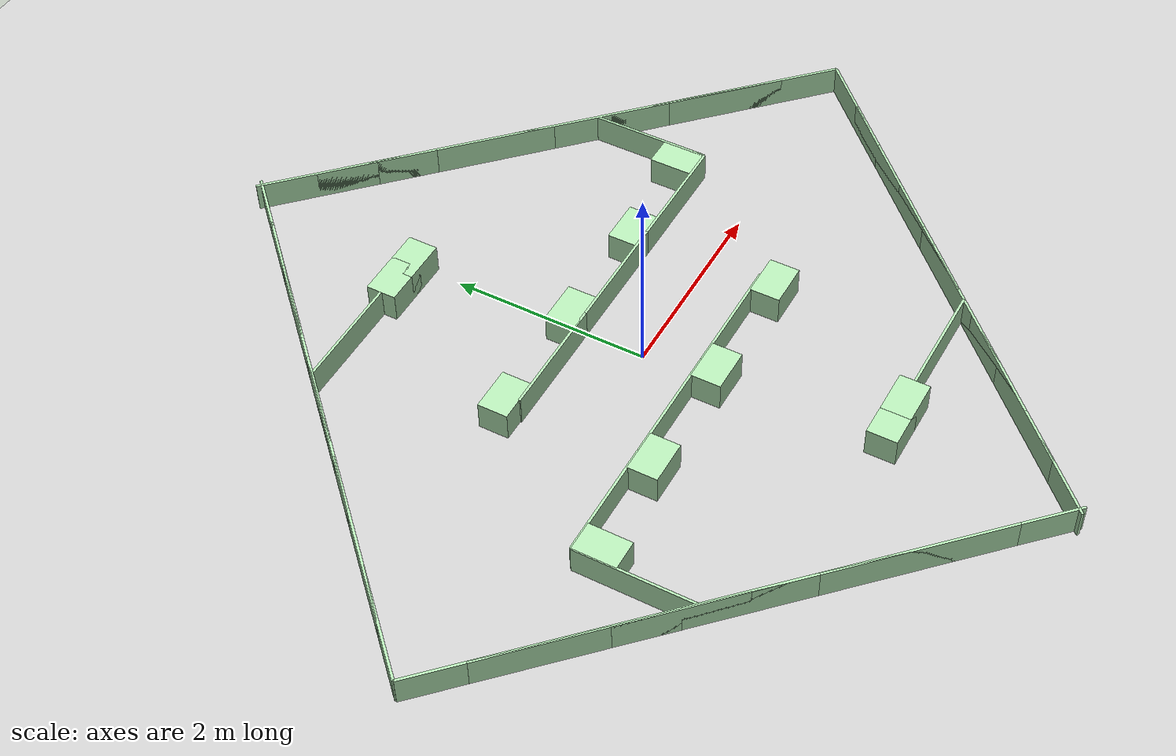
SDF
<?xml version="1.0" encoding="UTF-8"?>
<sdf version="1.4">
  <world name="default">
    <scene>
      <ambient>0.5 0.5 0.5 1</ambient>
      <background>0.5 0.5 0.5 1</background>
      <shadows>false</shadows>
    </scene>
    <physics type="ode">
      <gravity>0 0 -9.81</gravity>
      <ode>
        <solver>
          <type>quick</type>
          <iters>10</iters>
          <sor>1.3</sor>
        </solver>
        <constraints>
          <cfm>0.0</cfm>
          <erp>0.2</erp>
          <contact_max_correcting_vel>100.0</contact_max_correcting_vel>
          <contact_surface_layer>0.001</contact_surface_layer>
        </constraints>
      </ode>
      <real_time_update_rate>1000</real_time_update_rate>
      <max_step_size>0.001</max_step_size>
    </physics>
    <light type="directional" name="directional_light_1">
      <cast_shadows>false</cast_shadows>
      <pose>0 0 30 0.1 0.1 0</pose>
      <diffuse>1.0 1.0 1.0 1</diffuse>
      <specular>.1 .1 .1 1</specular>
      <attenuation>
        <range>300</range>
      </attenuation>
      <direction>0.1 0.1 -1</direction>
    </light>
    <model name='ground_plane'>
      <static>1</static>
      <link name='link'>
        <collision name='collision'>
          <geometry>
            <plane>
              <normal>0 0 1</normal>
              <size>100 100</size>
            </plane>
          </geometry>
          <surface>
            <friction>
              <ode>
                <mu>100</mu>
                <mu2>50</mu2>
              </ode>
              <torsional>
                <ode/>
              </torsional>
            </friction>
            <contact>
              <ode/>
            </contact>
            <bounce/>
          </surface>
          <max_contacts>10</max_contacts>
        </collision>
        <visual name='visual'>
          <cast_shadows>0</cast_shadows>
          <geometry>
            <plane>
              <normal>0 0 1</normal>
              <size>100 100</size>
            </plane>
          </geometry>
          <material>
            <script>
              <uri>file://media/materials/scripts/gazebo.material</uri>
              <name>Gazebo/Grey</name>
            </script>
          </material>
        </visual>
        <self_collide>0</self_collide>
        <kinematic>0</kinematic>
        <gravity>1</gravity>
      </link>
    </model>

<!--______________________________gazebo world______________________________ -->
    <model name="wall_1">
      <static>true</static>
      <link name="wall_1_link">
        <pose> 3.83614770619 0.431052293811  0.15 0 0 0.785398163397</pose>
        <collision name="wall_1_collision">
          <geometry>
            <box>
              <size>0.0254 1.2192 0.3</size>
            </box>
          </geometry>
        </collision>
        <visual name="wall_1_visual">
          <geometry>
            <box>
              <size>0.0254 1.2192 0.3</size>
            </box>
          </geometry>
          <material>
             <ambient>0.7 0.9 0.7 1.0</ambient>
             <diffuse>0.7 0.9 0.7 1.0</diffuse>
             <specular>0.1 0.1 0.1 1</specular>
             <emissive>0 0 0 0</emissive>
           </material>
        </visual>
      </link>
    </model>

    <model name="wall_2">
      <static>true</static>
      <link name="wall_2_link">
        <pose> 3.83614770619 -0.431052293811  0.15 0 0 -0.785398163397</pose>
        <collision name="wall_2_collision">
          <geometry>
            <box>
              <size>0.0254 1.2192 0.3</size>
            </box>
          </geometry>
        </collision>
        <visual name="wall_2_visual">
          <geometry>
            <box>
              <size>0.0254 1.2192 0.3</size>
            </box>
          </geometry>
          <material>
             <ambient>0.7 0.9 0.7 1.0</ambient>
             <diffuse>0.7 0.9 0.7 1.0</diffuse>
             <specular>0.1 0.1 0.1 1</specular>
             <emissive>0 0 0 0</emissive>
           </material>
        </visual>
      </link>
    </model>

    <model name="wall_3">
      <static>true</static>
      <link name="wall_3_link">
        <pose> -3.83614770619 -0.431052293811  0.15 0 0 0.785398163397</pose>
        <collision name="wall_3_collision">
          <geometry>
            <box>
              <size>0.0254 1.2192 0.3</size>
            </box>
          </geometry>
        </collision>
        <visual name="wall_3_visual">
          <geometry>
            <box>
              <size>0.0254 1.2192 0.3</size>
            </box>
          </geometry>
          <material>
             <ambient>0.7 0.9 0.7 1.0</ambient>
             <diffuse>0.7 0.9 0.7 1.0</diffuse>
             <specular>0.1 0.1 0.1 1</specular>
             <emissive>0 0 0 0</emissive>
           </material>
        </visual>
      </link>
    </model>

    <model name="wall_4">
      <static>true</static>
      <link name="wall_4_link">
        <pose> -3.83614770619 0.431052293811  0.15 0 0 -0.785398163397</pose>
        <collision name="wall_4_collision">
          <geometry>
            <box>
              <size>0.0254 1.2192 0.3</size>
            </box>
          </geometry>
        </collision>
        <visual name="wall_4_visual">
          <geometry>
            <box>
              <size>0.0254 1.2192 0.3</size>
            </box>
          </geometry>
          <material>
             <ambient>0.7 0.9 0.7 1.0</ambient>
             <diffuse>0.7 0.9 0.7 1.0</diffuse>
             <specular>0.1 0.1 0.1 1</specular>
             <emissive>0 0 0 0</emissive>
           </material>
        </visual>
      </link>
    </model>

    <model name="wall_5">
      <static>true</static>
      <link name="wall_5_link">
        <pose> 3.40509541238 0.862104587623  0.15 0 0 0.785398163397</pose>
        <collision name="wall_5_collision">
          <geometry>
            <box>
              <size>0.0254 1.2192 0.3</size>
            </box>
          </geometry>
        </collision>
        <visual name="wall_5_visual">
          <geometry>
            <box>
              <size>0.0254 1.2192 0.3</size>
            </box>
          </geometry>
          <material>
             <ambient>0.7 0.9 0.7 1.0</ambient>
             <diffuse>0.7 0.9 0.7 1.0</diffuse>
             <specular>0.1 0.1 0.1 1</specular>
             <emissive>0 0 0 0</emissive>
           </material>
        </visual>
      </link>
    </model>

    <model name="wall_6">
      <static>true</static>
      <link name="wall_6_link">
        <pose> 3.40509541238 -0.862104587623  0.15 0 0 -0.785398163397</pose>
        <collision name="wall_6_collision">
          <geometry>
            <box>
              <size>0.0254 1.2192 0.3</size>
            </box>
          </geometry>
        </collision>
        <visual name="wall_6_visual">
          <geometry>
            <box>
              <size>0.0254 1.2192 0.3</size>
            </box>
          </geometry>
          <material>
             <ambient>0.7 0.9 0.7 1.0</ambient>
             <diffuse>0.7 0.9 0.7 1.0</diffuse>
             <specular>0.1 0.1 0.1 1</specular>
             <emissive>0 0 0 0</emissive>
           </material>
        </visual>
      </link>
    </model>

    <model name="wall_7">
      <static>true</static>
      <link name="wall_7_link">
        <pose> -3.40509541238 -0.862104587623  0.15 0 0 0.785398163397</pose>
        <collision name="wall_7_collision">
          <geometry>
            <box>
              <size>0.0254 1.2192 0.3</size>
            </box>
          </geometry>
        </collision>
        <visual name="wall_7_visual">
          <geometry>
            <box>
              <size>0.0254 1.2192 0.3</size>
            </box>
          </geometry>
          <material>
             <ambient>0.7 0.9 0.7 1.0</ambient>
             <diffuse>0.7 0.9 0.7 1.0</diffuse>
             <specular>0.1 0.1 0.1 1</specular>
             <emissive>0 0 0 0</emissive>
           </material>
        </visual>
      </link>
    </model>

    <model name="wall_8">
      <static>true</static>
      <link name="wall_8_link">
        <pose> -3.40509541238 0.862104587623  0.15 0 0 -0.785398163397</pose>
        <collision name="wall_8_collision">
          <geometry>
            <box>
              <size>0.0254 1.2192 0.3</size>
            </box>
          </geometry>
        </collision>
        <visual name="wall_8_visual">
          <geometry>
            <box>
              <size>0.0254 1.2192 0.3</size>
            </box>
          </geometry>
          <material>
             <ambient>0.7 0.9 0.7 1.0</ambient>
             <diffuse>0.7 0.9 0.7 1.0</diffuse>
             <specular>0.1 0.1 0.1 1</specular>
             <emissive>0 0 0 0</emissive>
           </material>
        </visual>
      </link>
    </model>

    <model name="wall_9">
      <static>true</static>
      <link name="wall_9_link">
        <pose> 2.97404311857 1.29315688143  0.15 0 0 0.785398163397</pose>
        <collision name="wall_9_collision">
          <geometry>
            <box>
              <size>0.0254 1.2192 0.3</size>
            </box>
          </geometry>
        </collision>
        <visual name="wall_9_visual">
          <geometry>
            <box>
              <size>0.0254 1.2192 0.3</size>
            </box>
          </geometry>
          <material>
             <ambient>0.7 0.9 0.7 1.0</ambient>
             <diffuse>0.7 0.9 0.7 1.0</diffuse>
             <specular>0.1 0.1 0.1 1</specular>
             <emissive>0 0 0 0</emissive>
           </material>
        </visual>
      </link>
    </model>

    <model name="wall_10">
      <static>true</static>
      <link name="wall_10_link">
        <pose> 2.97404311857 -1.29315688143  0.15 0 0 -0.785398163397</pose>
        <collision name="wall_10_collision">
          <geometry>
            <box>
              <size>0.0254 1.2192 0.3</size>
            </box>
          </geometry>
        </collision>
        <visual name="wall_10_visual">
          <geometry>
            <box>
              <size>0.0254 1.2192 0.3</size>
            </box>
          </geometry>
          <material>
             <ambient>0.7 0.9 0.7 1.0</ambient>
             <diffuse>0.7 0.9 0.7 1.0</diffuse>
             <specular>0.1 0.1 0.1 1</specular>
             <emissive>0 0 0 0</emissive>
           </material>
        </visual>
      </link>
    </model>

    <model name="wall_11">
      <static>true</static>
      <link name="wall_11_link">
        <pose> -2.97404311857 -1.29315688143  0.15 0 0 0.785398163397</pose>
        <collision name="wall_11_collision">
          <geometry>
            <box>
              <size>0.0254 1.2192 0.3</size>
            </box>
          </geometry>
        </collision>
        <visual name="wall_11_visual">
          <geometry>
            <box>
              <size>0.0254 1.2192 0.3</size>
            </box>
          </geometry>
          <material>
             <ambient>0.7 0.9 0.7 1.0</ambient>
             <diffuse>0.7 0.9 0.7 1.0</diffuse>
             <specular>0.1 0.1 0.1 1</specular>
             <emissive>0 0 0 0</emissive>
           </material>
        </visual>
      </link>
    </model>

    <model name="wall_12">
      <static>true</static>
      <link name="wall_12_link">
        <pose> -2.97404311857 1.29315688143  0.15 0 0 -0.785398163397</pose>
        <collision name="wall_12_collision">
          <geometry>
            <box>
              <size>0.0254 1.2192 0.3</size>
            </box>
          </geometry>
        </collision>
        <visual name="wall_12_visual">
          <geometry>
            <box>
              <size>0.0254 1.2192 0.3</size>
            </box>
          </geometry>
          <material>
             <ambient>0.7 0.9 0.7 1.0</ambient>
             <diffuse>0.7 0.9 0.7 1.0</diffuse>
             <specular>0.1 0.1 0.1 1</specular>
             <emissive>0 0 0 0</emissive>
           </material>
        </visual>
      </link>
    </model>

    <model name="wall_13">
      <static>true</static>
      <link name="wall_13_link">
        <pose> 2.54299082475 1.72420917525  0.15 0 0 0.785398163397</pose>
        <collision name="wall_13_collision">
          <geometry>
            <box>
              <size>0.0254 1.2192 0.3</size>
            </box>
          </geometry>
        </collision>
        <visual name="wall_13_visual">
          <geometry>
            <box>
              <size>0.0254 1.2192 0.3</size>
            </box>
          </geometry>
          <material>
             <ambient>0.7 0.9 0.7 1.0</ambient>
             <diffuse>0.7 0.9 0.7 1.0</diffuse>
             <specular>0.1 0.1 0.1 1</specular>
             <emissive>0 0 0 0</emissive>
           </material>
        </visual>
      </link>
    </model>

    <model name="wall_14">
      <static>true</static>
      <link name="wall_14_link">
        <pose> 2.54299082475 -1.72420917525  0.15 0 0 -0.785398163397</pose>
        <collision name="wall_14_collision">
          <geometry>
            <box>
              <size>0.0254 1.2192 0.3</size>
            </box>
          </geometry>
        </collision>
        <visual name="wall_14_visual">
          <geometry>
            <box>
              <size>0.0254 1.2192 0.3</size>
            </box>
          </geometry>
          <material>
             <ambient>0.7 0.9 0.7 1.0</ambient>
             <diffuse>0.7 0.9 0.7 1.0</diffuse>
             <specular>0.1 0.1 0.1 1</specular>
             <emissive>0 0 0 0</emissive>
           </material>
        </visual>
      </link>
    </model>

    <model name="wall_15">
      <static>true</static>
      <link name="wall_15_link">
        <pose> -2.54299082475 -1.72420917525  0.15 0 0 0.785398163397</pose>
        <collision name="wall_15_collision">
          <geometry>
            <box>
              <size>0.0254 1.2192 0.3</size>
            </box>
          </geometry>
        </collision>
        <visual name="wall_15_visual">
          <geometry>
            <box>
              <size>0.0254 1.2192 0.3</size>
            </box>
          </geometry>
          <material>
             <ambient>0.7 0.9 0.7 1.0</ambient>
             <diffuse>0.7 0.9 0.7 1.0</diffuse>
             <specular>0.1 0.1 0.1 1</specular>
             <emissive>0 0 0 0</emissive>
           </material>
        </visual>
      </link>
    </model>

    <model name="wall_16">
      <static>true</static>
      <link name="wall_16_link">
        <pose> -2.54299082475 1.72420917525  0.15 0 0 -0.785398163397</pose>
        <collision name="wall_16_collision">
          <geometry>
            <box>
              <size>0.0254 1.2192 0.3</size>
            </box>
          </geometry>
        </collision>
        <visual name="wall_16_visual">
          <geometry>
            <box>
              <size>0.0254 1.2192 0.3</size>
            </box>
          </geometry>
          <material>
             <ambient>0.7 0.9 0.7 1.0</ambient>
             <diffuse>0.7 0.9 0.7 1.0</diffuse>
             <specular>0.1 0.1 0.1 1</specular>
             <emissive>0 0 0 0</emissive>
           </material>
        </visual>
      </link>
    </model>

    <model name="wall_17">
      <static>true</static>
      <link name="wall_17_link">
        <pose> 2.11193853094 2.15526146906  0.15 0 0 0.785398163397</pose>
        <collision name="wall_17_collision">
          <geometry>
            <box>
              <size>0.0254 1.2192 0.3</size>
            </box>
          </geometry>
        </collision>
        <visual name="wall_17_visual">
          <geometry>
            <box>
              <size>0.0254 1.2192 0.3</size>
            </box>
          </geometry>
          <material>
             <ambient>0.7 0.9 0.7 1.0</ambient>
             <diffuse>0.7 0.9 0.7 1.0</diffuse>
             <specular>0.1 0.1 0.1 1</specular>
             <emissive>0 0 0 0</emissive>
           </material>
        </visual>
      </link>
    </model>

    <model name="wall_18">
      <static>true</static>
      <link name="wall_18_link">
        <pose> 2.11193853094 -2.15526146906  0.15 0 0 -0.785398163397</pose>
        <collision name="wall_18_collision">
          <geometry>
            <box>
              <size>0.0254 1.2192 0.3</size>
            </box>
          </geometry>
        </collision>
        <visual name="wall_18_visual">
          <geometry>
            <box>
              <size>0.0254 1.2192 0.3</size>
            </box>
          </geometry>
          <material>
             <ambient>0.7 0.9 0.7 1.0</ambient>
             <diffuse>0.7 0.9 0.7 1.0</diffuse>
             <specular>0.1 0.1 0.1 1</specular>
             <emissive>0 0 0 0</emissive>
           </material>
        </visual>
      </link>
    </model>

    <model name="wall_19">
      <static>true</static>
      <link name="wall_19_link">
        <pose> -2.11193853094 -2.15526146906  0.15 0 0 0.785398163397</pose>
        <collision name="wall_19_collision">
          <geometry>
            <box>
              <size>0.0254 1.2192 0.3</size>
            </box>
          </geometry>
        </collision>
        <visual name="wall_19_visual">
          <geometry>
            <box>
              <size>0.0254 1.2192 0.3</size>
            </box>
          </geometry>
          <material>
             <ambient>0.7 0.9 0.7 1.0</ambient>
             <diffuse>0.7 0.9 0.7 1.0</diffuse>
             <specular>0.1 0.1 0.1 1</specular>
             <emissive>0 0 0 0</emissive>
           </material>
        </visual>
      </link>
    </model>

    <model name="wall_20">
      <static>true</static>
      <link name="wall_20_link">
        <pose> -2.11193853094 2.15526146906  0.15 0 0 -0.785398163397</pose>
        <collision name="wall_20_collision">
          <geometry>
            <box>
              <size>0.0254 1.2192 0.3</size>
            </box>
          </geometry>
        </collision>
        <visual name="wall_20_visual">
          <geometry>
            <box>
              <size>0.0254 1.2192 0.3</size>
            </box>
          </geometry>
          <material>
             <ambient>0.7 0.9 0.7 1.0</ambient>
             <diffuse>0.7 0.9 0.7 1.0</diffuse>
             <specular>0.1 0.1 0.1 1</specular>
             <emissive>0 0 0 0</emissive>
           </material>
        </visual>
      </link>
    </model>

    <model name="wall_21">
      <static>true</static>
      <link name="wall_21_link">
        <pose> 1.68088623713 2.58631376287  0.15 0 0 0.785398163397</pose>
        <collision name="wall_21_collision">
          <geometry>
            <box>
              <size>0.0254 1.2192 0.3</size>
            </box>
          </geometry>
        </collision>
        <visual name="wall_21_visual">
          <geometry>
            <box>
              <size>0.0254 1.2192 0.3</size>
            </box>
          </geometry>
          <material>
             <ambient>0.7 0.9 0.7 1.0</ambient>
             <diffuse>0.7 0.9 0.7 1.0</diffuse>
             <specular>0.1 0.1 0.1 1</specular>
             <emissive>0 0 0 0</emissive>
           </material>
        </visual>
      </link>
    </model>

    <model name="wall_22">
      <static>true</static>
      <link name="wall_22_link">
        <pose> 1.68088623713 -2.58631376287  0.15 0 0 -0.785398163397</pose>
        <collision name="wall_22_collision">
          <geometry>
            <box>
              <size>0.0254 1.2192 0.3</size>
            </box>
          </geometry>
        </collision>
        <visual name="wall_22_visual">
          <geometry>
            <box>
              <size>0.0254 1.2192 0.3</size>
            </box>
          </geometry>
          <material>
             <ambient>0.7 0.9 0.7 1.0</ambient>
             <diffuse>0.7 0.9 0.7 1.0</diffuse>
             <specular>0.1 0.1 0.1 1</specular>
             <emissive>0 0 0 0</emissive>
           </material>
        </visual>
      </link>
    </model>

    <model name="wall_23">
      <static>true</static>
      <link name="wall_23_link">
        <pose> -1.68088623713 -2.58631376287  0.15 0 0 0.785398163397</pose>
        <collision name="wall_23_collision">
          <geometry>
            <box>
              <size>0.0254 1.2192 0.3</size>
            </box>
          </geometry>
        </collision>
        <visual name="wall_23_visual">
          <geometry>
            <box>
              <size>0.0254 1.2192 0.3</size>
            </box>
          </geometry>
          <material>
             <ambient>0.7 0.9 0.7 1.0</ambient>
             <diffuse>0.7 0.9 0.7 1.0</diffuse>
             <specular>0.1 0.1 0.1 1</specular>
             <emissive>0 0 0 0</emissive>
           </material>
        </visual>
      </link>
    </model>

    <model name="wall_24">
      <static>true</static>
      <link name="wall_24_link">
        <pose> -1.68088623713 2.58631376287  0.15 0 0 -0.785398163397</pose>
        <collision name="wall_24_collision">
          <geometry>
            <box>
              <size>0.0254 1.2192 0.3</size>
            </box>
          </geometry>
        </collision>
        <visual name="wall_24_visual">
          <geometry>
            <box>
              <size>0.0254 1.2192 0.3</size>
            </box>
          </geometry>
          <material>
             <ambient>0.7 0.9 0.7 1.0</ambient>
             <diffuse>0.7 0.9 0.7 1.0</diffuse>
             <specular>0.1 0.1 0.1 1</specular>
             <emissive>0 0 0 0</emissive>
           </material>
        </visual>
      </link>
    </model>

    <model name="wall_25">
      <static>true</static>
      <link name="wall_25_link">
        <pose> 1.24983394332 3.01736605668  0.15 0 0 0.785398163397</pose>
        <collision name="wall_25_collision">
          <geometry>
            <box>
              <size>0.0254 1.2192 0.3</size>
            </box>
          </geometry>
        </collision>
        <visual name="wall_25_visual">
          <geometry>
            <box>
              <size>0.0254 1.2192 0.3</size>
            </box>
          </geometry>
          <material>
             <ambient>0.7 0.9 0.7 1.0</ambient>
             <diffuse>0.7 0.9 0.7 1.0</diffuse>
             <specular>0.1 0.1 0.1 1</specular>
             <emissive>0 0 0 0</emissive>
           </material>
        </visual>
      </link>
    </model>

    <model name="wall_26">
      <static>true</static>
      <link name="wall_26_link">
        <pose> 1.24983394332 -3.01736605668  0.15 0 0 -0.785398163397</pose>
        <collision name="wall_26_collision">
          <geometry>
            <box>
              <size>0.0254 1.2192 0.3</size>
            </box>
          </geometry>
        </collision>
        <visual name="wall_26_visual">
          <geometry>
            <box>
              <size>0.0254 1.2192 0.3</size>
            </box>
          </geometry>
          <material>
             <ambient>0.7 0.9 0.7 1.0</ambient>
             <diffuse>0.7 0.9 0.7 1.0</diffuse>
             <specular>0.1 0.1 0.1 1</specular>
             <emissive>0 0 0 0</emissive>
           </material>
        </visual>
      </link>
    </model>

    <model name="wall_27">
      <static>true</static>
      <link name="wall_27_link">
        <pose> -1.24983394332 -3.01736605668  0.15 0 0 0.785398163397</pose>
        <collision name="wall_27_collision">
          <geometry>
            <box>
              <size>0.0254 1.2192 0.3</size>
            </box>
          </geometry>
        </collision>
        <visual name="wall_27_visual">
          <geometry>
            <box>
              <size>0.0254 1.2192 0.3</size>
            </box>
          </geometry>
          <material>
             <ambient>0.7 0.9 0.7 1.0</ambient>
             <diffuse>0.7 0.9 0.7 1.0</diffuse>
             <specular>0.1 0.1 0.1 1</specular>
             <emissive>0 0 0 0</emissive>
           </material>
        </visual>
      </link>
    </model>

    <model name="wall_28">
      <static>true</static>
      <link name="wall_28_link">
        <pose> -1.24983394332 3.01736605668  0.15 0 0 -0.785398163397</pose>
        <collision name="wall_28_collision">
          <geometry>
            <box>
              <size>0.0254 1.2192 0.3</size>
            </box>
          </geometry>
        </collision>
        <visual name="wall_28_visual">
          <geometry>
            <box>
              <size>0.0254 1.2192 0.3</size>
            </box>
          </geometry>
          <material>
             <ambient>0.7 0.9 0.7 1.0</ambient>
             <diffuse>0.7 0.9 0.7 1.0</diffuse>
             <specular>0.1 0.1 0.1 1</specular>
             <emissive>0 0 0 0</emissive>
           </material>
        </visual>
      </link>
    </model>

    <model name="wall_29">
      <static>true</static>
      <link name="wall_29_link">
        <pose> 0.818781649509 3.44841835049  0.15 0 0 0.785398163397</pose>
        <collision name="wall_29_collision">
          <geometry>
            <box>
              <size>0.0254 1.2192 0.3</size>
            </box>
          </geometry>
        </collision>
        <visual name="wall_29_visual">
          <geometry>
            <box>
              <size>0.0254 1.2192 0.3</size>
            </box>
          </geometry>
          <material>
             <ambient>0.7 0.9 0.7 1.0</ambient>
             <diffuse>0.7 0.9 0.7 1.0</diffuse>
             <specular>0.1 0.1 0.1 1</specular>
             <emissive>0 0 0 0</emissive>
           </material>
        </visual>
      </link>
    </model>

    <model name="wall_30">
      <static>true</static>
      <link name="wall_30_link">
        <pose> 0.818781649509 -3.44841835049  0.15 0 0 -0.785398163397</pose>
        <collision name="wall_30_collision">
          <geometry>
            <box>
              <size>0.0254 1.2192 0.3</size>
            </box>
          </geometry>
        </collision>
        <visual name="wall_30_visual">
          <geometry>
            <box>
              <size>0.0254 1.2192 0.3</size>
            </box>
          </geometry>
          <material>
             <ambient>0.7 0.9 0.7 1.0</ambient>
             <diffuse>0.7 0.9 0.7 1.0</diffuse>
             <specular>0.1 0.1 0.1 1</specular>
             <emissive>0 0 0 0</emissive>
           </material>
        </visual>
      </link>
    </model>

    <model name="wall_31">
      <static>true</static>
      <link name="wall_31_link">
        <pose> -0.818781649509 -3.44841835049  0.15 0 0 0.785398163397</pose>
        <collision name="wall_31_collision">
          <geometry>
            <box>
              <size>0.0254 1.2192 0.3</size>
            </box>
          </geometry>
        </collision>
        <visual name="wall_31_visual">
          <geometry>
            <box>
              <size>0.0254 1.2192 0.3</size>
            </box>
          </geometry>
          <material>
             <ambient>0.7 0.9 0.7 1.0</ambient>
             <diffuse>0.7 0.9 0.7 1.0</diffuse>
             <specular>0.1 0.1 0.1 1</specular>
             <emissive>0 0 0 0</emissive>
           </material>
        </visual>
      </link>
    </model>

    <model name="wall_32">
      <static>true</static>
      <link name="wall_32_link">
        <pose> -0.818781649509 3.44841835049  0.15 0 0 -0.785398163397</pose>
        <collision name="wall_32_collision">
          <geometry>
            <box>
              <size>0.0254 1.2192 0.3</size>
            </box>
          </geometry>
        </collision>
        <visual name="wall_32_visual">
          <geometry>
            <box>
              <size>0.0254 1.2192 0.3</size>
            </box>
          </geometry>
          <material>
             <ambient>0.7 0.9 0.7 1.0</ambient>
             <diffuse>0.7 0.9 0.7 1.0</diffuse>
             <specular>0.1 0.1 0.1 1</specular>
             <emissive>0 0 0 0</emissive>
           </material>
        </visual>
      </link>
    </model>

    <model name="wall_33">
      <static>true</static>
      <link name="wall_33_link">
        <pose> 0.387729355698 3.8794706443  0.15 0 0 0.785398163397</pose>
        <collision name="wall_33_collision">
          <geometry>
            <box>
              <size>0.0254 1.2192 0.3</size>
            </box>
          </geometry>
        </collision>
        <visual name="wall_33_visual">
          <geometry>
            <box>
              <size>0.0254 1.2192 0.3</size>
            </box>
          </geometry>
          <material>
             <ambient>0.7 0.9 0.7 1.0</ambient>
             <diffuse>0.7 0.9 0.7 1.0</diffuse>
             <specular>0.1 0.1 0.1 1</specular>
             <emissive>0 0 0 0</emissive>
           </material>
        </visual>
      </link>
    </model>

    <model name="wall_34">
      <static>true</static>
      <link name="wall_34_link">
        <pose> 0.387729355698 -3.8794706443  0.15 0 0 -0.785398163397</pose>
        <collision name="wall_34_collision">
          <geometry>
            <box>
              <size>0.0254 1.2192 0.3</size>
            </box>
          </geometry>
        </collision>
        <visual name="wall_34_visual">
          <geometry>
            <box>
              <size>0.0254 1.2192 0.3</size>
            </box>
          </geometry>
          <material>
             <ambient>0.7 0.9 0.7 1.0</ambient>
             <diffuse>0.7 0.9 0.7 1.0</diffuse>
             <specular>0.1 0.1 0.1 1</specular>
             <emissive>0 0 0 0</emissive>
           </material>
        </visual>
      </link>
    </model>

    <model name="wall_35">
      <static>true</static>
      <link name="wall_35_link">
        <pose> -0.387729355698 -3.8794706443  0.15 0 0 0.785398163397</pose>
        <collision name="wall_35_collision">
          <geometry>
            <box>
              <size>0.0254 1.2192 0.3</size>
            </box>
          </geometry>
        </collision>
        <visual name="wall_35_visual">
          <geometry>
            <box>
              <size>0.0254 1.2192 0.3</size>
            </box>
          </geometry>
          <material>
             <ambient>0.7 0.9 0.7 1.0</ambient>
             <diffuse>0.7 0.9 0.7 1.0</diffuse>
             <specular>0.1 0.1 0.1 1</specular>
             <emissive>0 0 0 0</emissive>
           </material>
        </visual>
      </link>
    </model>

    <model name="wall_36">
      <static>true</static>
      <link name="wall_36_link">
        <pose> -0.387729355698 3.8794706443  0.15 0 0 -0.785398163397</pose>
        <collision name="wall_36_collision">
          <geometry>
            <box>
              <size>0.0254 1.2192 0.3</size>
            </box>
          </geometry>
        </collision>
        <visual name="wall_36_visual">
          <geometry>
            <box>
              <size>0.0254 1.2192 0.3</size>
            </box>
          </geometry>
          <material>
             <ambient>0.7 0.9 0.7 1.0</ambient>
             <diffuse>0.7 0.9 0.7 1.0</diffuse>
             <specular>0.1 0.1 0.1 1</specular>
             <emissive>0 0 0 0</emissive>
           </material>
        </visual>
      </link>
    </model>

    <model name="wall_37">
      <static>true</static>
      <link name="wall_37_link">
        <pose> -1.8288 -0.6096  0.15 0 0 1.57079632679</pose>
        <collision name="wall_37_collision">
          <geometry>
            <box>
              <size>0.0254 1.2192 0.3</size>
            </box>
          </geometry>
        </collision>
        <visual name="wall_37_visual">
          <geometry>
            <box>
              <size>0.0254 1.2192 0.3</size>
            </box>
          </geometry>
          <material>
             <ambient>0.7 0.9 0.7 1.0</ambient>
             <diffuse>0.7 0.9 0.7 1.0</diffuse>
             <specular>0.1 0.1 0.1 1</specular>
             <emissive>0 0 0 0</emissive>
           </material>
        </visual>
      </link>
    </model>

    <model name="wall_38">
      <static>true</static>
      <link name="wall_38_link">
        <pose> 1.8288 0.6096  0.15 0 0 1.57079632679</pose>
        <collision name="wall_38_collision">
          <geometry>
            <box>
              <size>0.0254 1.2192 0.3</size>
            </box>
          </geometry>
        </collision>
        <visual name="wall_38_visual">
          <geometry>
            <box>
              <size>0.0254 1.2192 0.3</size>
            </box>
          </geometry>
          <material>
             <ambient>0.7 0.9 0.7 1.0</ambient>
             <diffuse>0.7 0.9 0.7 1.0</diffuse>
             <specular>0.1 0.1 0.1 1</specular>
             <emissive>0 0 0 0</emissive>
           </material>
        </visual>
      </link>
    </model>

    <model name="wall_39">
      <static>true</static>
      <link name="wall_39_link">
        <pose> -0.6096 -0.6096  0.15 0 0 1.57079632679</pose>
        <collision name="wall_39_collision">
          <geometry>
            <box>
              <size>0.0254 1.2192 0.3</size>
            </box>
          </geometry>
        </collision>
        <visual name="wall_39_visual">
          <geometry>
            <box>
              <size>0.0254 1.2192 0.3</size>
            </box>
          </geometry>
          <material>
             <ambient>0.7 0.9 0.7 1.0</ambient>
             <diffuse>0.7 0.9 0.7 1.0</diffuse>
             <specular>0.1 0.1 0.1 1</specular>
             <emissive>0 0 0 0</emissive>
           </material>
        </visual>
      </link>
    </model>

    <model name="wall_40">
      <static>true</static>
      <link name="wall_40_link">
        <pose> 0.6096 0.6096  0.15 0 0 1.57079632679</pose>
        <collision name="wall_40_collision">
          <geometry>
            <box>
              <size>0.0254 1.2192 0.3</size>
            </box>
          </geometry>
        </collision>
        <visual name="wall_40_visual">
          <geometry>
            <box>
              <size>0.0254 1.2192 0.3</size>
            </box>
          </geometry>
          <material>
             <ambient>0.7 0.9 0.7 1.0</ambient>
             <diffuse>0.7 0.9 0.7 1.0</diffuse>
             <specular>0.1 0.1 0.1 1</specular>
             <emissive>0 0 0 0</emissive>
           </material>
        </visual>
      </link>
    </model>

    <model name="wall_41">
      <static>true</static>
      <link name="wall_41_link">
        <pose> -1.2192 2.4384  0.15 0 0 1.57079632679</pose>
        <collision name="wall_41_collision">
          <geometry>
            <box>
              <size>0.0254 1.2192 0.3</size>
            </box>
          </geometry>
        </collision>
        <visual name="wall_41_visual">
          <geometry>
            <box>
              <size>0.0254 1.2192 0.3</size>
            </box>
          </geometry>
          <material>
             <ambient>0.7 0.9 0.7 1.0</ambient>
             <diffuse>0.7 0.9 0.7 1.0</diffuse>
             <specular>0.1 0.1 0.1 1</specular>
             <emissive>0 0 0 0</emissive>
           </material>
        </visual>
      </link>
    </model>

    <model name="wall_42">
      <static>true</static>
      <link name="wall_42_link">
        <pose> 1.2192 -2.4384  0.15 0 0 1.57079632679</pose>
        <collision name="wall_42_collision">
          <geometry>
            <box>
              <size>0.0254 1.2192 0.3</size>
            </box>
          </geometry>
        </collision>
        <visual name="wall_42_visual">
          <geometry>
            <box>
              <size>0.0254 1.2192 0.3</size>
            </box>
          </geometry>
          <material>
             <ambient>0.7 0.9 0.7 1.0</ambient>
             <diffuse>0.7 0.9 0.7 1.0</diffuse>
             <specular>0.1 0.1 0.1 1</specular>
             <emissive>0 0 0 0</emissive>
           </material>
        </visual>
      </link>
    </model>

    <model name="wall_43">
      <static>true</static>
      <link name="wall_43_link">
        <pose> -2.4384 -1.2192  0.15 0 0 0.0</pose>
        <collision name="wall_43_collision">
          <geometry>
            <box>
              <size>0.0254 1.2192 0.3</size>
            </box>
          </geometry>
        </collision>
        <visual name="wall_43_visual">
          <geometry>
            <box>
              <size>0.0254 1.2192 0.3</size>
            </box>
          </geometry>
          <material>
             <ambient>0.7 0.9 0.7 1.0</ambient>
             <diffuse>0.7 0.9 0.7 1.0</diffuse>
             <specular>0.1 0.1 0.1 1</specular>
             <emissive>0 0 0 0</emissive>
           </material>
        </visual>
      </link>
    </model>

    <model name="wall_44">
      <static>true</static>
      <link name="wall_44_link">
        <pose> 2.4384 1.2192  0.15 0 0 0.0</pose>
        <collision name="wall_44_collision">
          <geometry>
            <box>
              <size>0.0254 1.2192 0.3</size>
            </box>
          </geometry>
        </collision>
        <visual name="wall_44_visual">
          <geometry>
            <box>
              <size>0.0254 1.2192 0.3</size>
            </box>
          </geometry>
          <material>
             <ambient>0.7 0.9 0.7 1.0</ambient>
             <diffuse>0.7 0.9 0.7 1.0</diffuse>
             <specular>0.1 0.1 0.1 1</specular>
             <emissive>0 0 0 0</emissive>
           </material>
        </visual>
      </link>
    </model>

    <model name="wall_45">
      <static>true</static>
      <link name="wall_45_link">
        <pose> 0.6096 -0.6096  0.15 0 0 1.57079632679</pose>
        <collision name="wall_45_collision">
          <geometry>
            <box>
              <size>0.0254 1.2192 0.3</size>
            </box>
          </geometry>
        </collision>
        <visual name="wall_45_visual">
          <geometry>
            <box>
              <size>0.0254 1.2192 0.3</size>
            </box>
          </geometry>
          <material>
             <ambient>0.7 0.9 0.7 1.0</ambient>
             <diffuse>0.7 0.9 0.7 1.0</diffuse>
             <specular>0.1 0.1 0.1 1</specular>
             <emissive>0 0 0 0</emissive>
           </material>
        </visual>
      </link>
    </model>

    <model name="wall_46">
      <static>true</static>
      <link name="wall_46_link">
        <pose> -0.6096 0.6096  0.15 0 0 1.57079632679</pose>
        <collision name="wall_46_collision">
          <geometry>
            <box>
              <size>0.0254 1.2192 0.3</size>
            </box>
          </geometry>
        </collision>
        <visual name="wall_46_visual">
          <geometry>
            <box>
              <size>0.0254 1.2192 0.3</size>
            </box>
          </geometry>
          <material>
             <ambient>0.7 0.9 0.7 1.0</ambient>
             <diffuse>0.7 0.9 0.7 1.0</diffuse>
             <specular>0.1 0.1 0.1 1</specular>
             <emissive>0 0 0 0</emissive>
           </material>
        </visual>
      </link>
    </model>

    <model name="box_1">
      <static>true</static>
      <link name="box_1_link">
        <pose> -1.2192 -0.762  0.15 0 0 1.57079632679</pose>
        <collision name="box_1_collision">
          <geometry>
            <box>
              <size>0.3048 0.4445 0.3</size>
            </box>
          </geometry>
        </collision>
        <visual name="box_1_visual">
          <geometry>
            <box>
              <size>0.3048 0.4445 0.3</size>
            </box>
          </geometry>
          <material>
             <ambient>0.7 0.9 0.7 1.0</ambient>
             <diffuse>0.7 0.9 0.7 1.0</diffuse>
             <specular>0.1 0.1 0.1 1</specular>
             <emissive>0 0 0 0</emissive>
           </material>
        </visual>
      </link>
    </model>

    <model name="box_2">
      <static>true</static>
      <link name="box_2_link">
        <pose> 0.0 -0.762  0.15 0 0 1.57079632679</pose>
        <collision name="box_2_collision">
          <geometry>
            <box>
              <size>0.3048 0.4445 0.3</size>
            </box>
          </geometry>
        </collision>
        <visual name="box_2_visual">
          <geometry>
            <box>
              <size>0.3048 0.4445 0.3</size>
            </box>
          </geometry>
          <material>
             <ambient>0.7 0.9 0.7 1.0</ambient>
             <diffuse>0.7 0.9 0.7 1.0</diffuse>
             <specular>0.1 0.1 0.1 1</specular>
             <emissive>0 0 0 0</emissive>
           </material>
        </visual>
      </link>
    </model>

    <model name="box_3">
      <static>true</static>
      <link name="box_3_link">
        <pose> 1.2192 -0.762  0.15 0 0 1.57079632679</pose>
        <collision name="box_3_collision">
          <geometry>
            <box>
              <size>0.3048 0.4445 0.3</size>
            </box>
          </geometry>
        </collision>
        <visual name="box_3_visual">
          <geometry>
            <box>
              <size>0.3048 0.4445 0.3</size>
            </box>
          </geometry>
          <material>
             <ambient>0.7 0.9 0.7 1.0</ambient>
             <diffuse>0.7 0.9 0.7 1.0</diffuse>
             <specular>0.1 0.1 0.1 1</specular>
             <emissive>0 0 0 0</emissive>
           </material>
        </visual>
      </link>
    </model>

    <model name="box_4">
      <static>true</static>
      <link name="box_4_link">
        <pose> -1.2192 0.762  0.15 0 0 1.57079632679</pose>
        <collision name="box_4_collision">
          <geometry>
            <box>
              <size>0.3048 0.4445 0.3</size>
            </box>
          </geometry>
        </collision>
        <visual name="box_4_visual">
          <geometry>
            <box>
              <size>0.3048 0.4445 0.3</size>
            </box>
          </geometry>
          <material>
             <ambient>0.7 0.9 0.7 1.0</ambient>
             <diffuse>0.7 0.9 0.7 1.0</diffuse>
             <specular>0.1 0.1 0.1 1</specular>
             <emissive>0 0 0 0</emissive>
           </material>
        </visual>
      </link>
    </model>

    <model name="box_5">
      <static>true</static>
      <link name="box_5_link">
        <pose> 0.0 0.762  0.15 0 0 1.57079632679</pose>
        <collision name="box_5_collision">
          <geometry>
            <box>
              <size>0.3048 0.4445 0.3</size>
            </box>
          </geometry>
        </collision>
        <visual name="box_5_visual">
          <geometry>
            <box>
              <size>0.3048 0.4445 0.3</size>
            </box>
          </geometry>
          <material>
             <ambient>0.7 0.9 0.7 1.0</ambient>
             <diffuse>0.7 0.9 0.7 1.0</diffuse>
             <specular>0.1 0.1 0.1 1</specular>
             <emissive>0 0 0 0</emissive>
           </material>
        </visual>
      </link>
    </model>

    <model name="box_6">
      <static>true</static>
      <link name="box_6_link">
        <pose> 1.2192 0.762  0.15 0 0 1.57079632679</pose>
        <collision name="box_6_collision">
          <geometry>
            <box>
              <size>0.3048 0.4445 0.3</size>
            </box>
          </geometry>
        </collision>
        <visual name="box_6_visual">
          <geometry>
            <box>
              <size>0.3048 0.4445 0.3</size>
            </box>
          </geometry>
          <material>
             <ambient>0.7 0.9 0.7 1.0</ambient>
             <diffuse>0.7 0.9 0.7 1.0</diffuse>
             <specular>0.1 0.1 0.1 1</specular>
             <emissive>0 0 0 0</emissive>
           </material>
        </visual>
      </link>
    </model>

    <model name="box_7">
      <static>true</static>
      <link name="box_7_link">
        <pose> -2.286 -0.83185  0.15 0 0 0.0</pose>
        <collision name="box_7_collision">
          <geometry>
            <box>
              <size>0.3048 0.4445 0.3</size>
            </box>
          </geometry>
        </collision>
        <visual name="box_7_visual">
          <geometry>
            <box>
              <size>0.3048 0.4445 0.3</size>
            </box>
          </geometry>
          <material>
             <ambient>0.7 0.9 0.7 1.0</ambient>
             <diffuse>0.7 0.9 0.7 1.0</diffuse>
             <specular>0.1 0.1 0.1 1</specular>
             <emissive>0 0 0 0</emissive>
           </material>
        </visual>
      </link>
    </model>

    <model name="box_8">
      <static>true</static>
      <link name="box_8_link">
        <pose> 2.286 0.83185  0.15 0 0 0.0</pose>
        <collision name="box_8_collision">
          <geometry>
            <box>
              <size>0.3048 0.4445 0.3</size>
            </box>
          </geometry>
        </collision>
        <visual name="box_8_visual">
          <geometry>
            <box>
              <size>0.3048 0.4445 0.3</size>
            </box>
          </geometry>
          <material>
             <ambient>0.7 0.9 0.7 1.0</ambient>
             <diffuse>0.7 0.9 0.7 1.0</diffuse>
             <specular>0.1 0.1 0.1 1</specular>
             <emissive>0 0 0 0</emissive>
           </material>
        </visual>
      </link>
    </model>

    <model name="box_9">
      <static>true</static>
      <link name="box_9_link">
        <pose> -0.4572 2.4384  0.15 0 0 1.57079632679</pose>
        <collision name="box_9_collision">
          <geometry>
            <box>
              <size>0.3048 0.4445 0.3</size>
            </box>
          </geometry>
        </collision>
        <visual name="box_9_visual">
          <geometry>
            <box>
              <size>0.3048 0.4445 0.3</size>
            </box>
          </geometry>
          <material>
             <ambient>0.7 0.9 0.7 1.0</ambient>
             <diffuse>0.7 0.9 0.7 1.0</diffuse>
             <specular>0.1 0.1 0.1 1</specular>
             <emissive>0 0 0 0</emissive>
           </material>
        </visual>
      </link>
    </model>

    <model name="box_10">
      <static>true</static>
      <link name="box_10_link">
        <pose> -0.1524 2.4384  0.15 0 0 1.57079632679</pose>
        <collision name="box_10_collision">
          <geometry>
            <box>
              <size>0.3048 0.4445 0.3</size>
            </box>
          </geometry>
        </collision>
        <visual name="box_10_visual">
          <geometry>
            <box>
              <size>0.3048 0.4445 0.3</size>
            </box>
          </geometry>
          <material>
             <ambient>0.7 0.9 0.7 1.0</ambient>
             <diffuse>0.7 0.9 0.7 1.0</diffuse>
             <specular>0.1 0.1 0.1 1</specular>
             <emissive>0 0 0 0</emissive>
           </material>
        </visual>
      </link>
    </model>

    <model name="box_11">
      <static>true</static>
      <link name="box_11_link">
        <pose> 0.1524 -2.4384  0.15 0 0 1.57079632679</pose>
        <collision name="box_11_collision">
          <geometry>
            <box>
              <size>0.3048 0.4445 0.3</size>
            </box>
          </geometry>
        </collision>
        <visual name="box_11_visual">
          <geometry>
            <box>
              <size>0.3048 0.4445 0.3</size>
            </box>
          </geometry>
          <material>
             <ambient>0.7 0.9 0.7 1.0</ambient>
             <diffuse>0.7 0.9 0.7 1.0</diffuse>
             <specular>0.1 0.1 0.1 1</specular>
             <emissive>0 0 0 0</emissive>
           </material>
        </visual>
      </link>
    </model>

    <model name="box_12">
      <static>true</static>
      <link name="box_12_link">
        <pose> 0.4572 -2.4384  0.15 0 0 1.57079632679</pose>
        <collision name="box_12_collision">
          <geometry>
            <box>
              <size>0.3048 0.4445 0.3</size>
            </box>
          </geometry>
        </collision>
        <visual name="box_12_visual">
          <geometry>
            <box>
              <size>0.3048 0.4445 0.3</size>
            </box>
          </geometry>
          <material>
             <ambient>0.7 0.9 0.7 1.0</ambient>
             <diffuse>0.7 0.9 0.7 1.0</diffuse>
             <specular>0.1 0.1 0.1 1</specular>
             <emissive>0 0 0 0</emissive>
           </material>
        </visual>
      </link>
    </model>

<!--______________________________gazebo world______________________________ -->

  </world>
</sdf>
